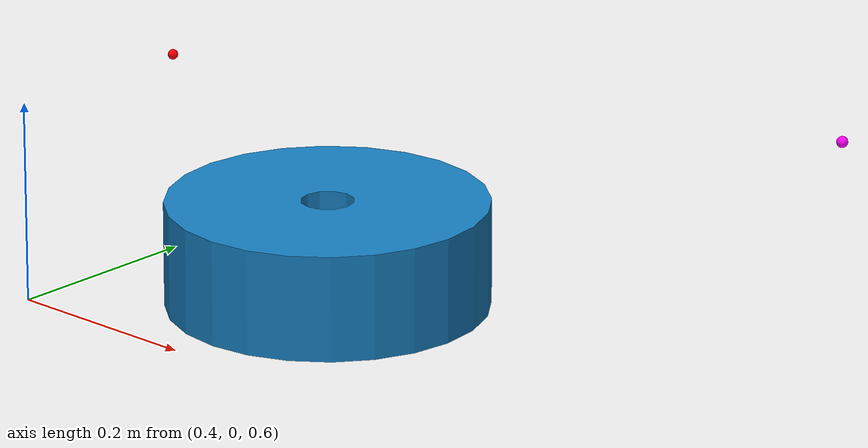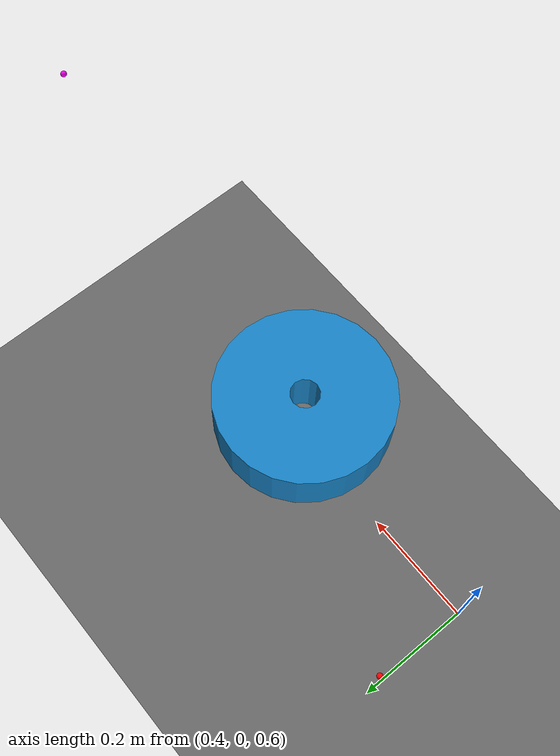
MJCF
<?xml version="1.0" encoding="utf-8"?>
<mujoco>
	<compiler angle="degree" coordinate="local" meshdir="./stls" texturedir="./textures"></compiler>
	<option timestep="0.002" gravity="0 0 0">
		<flag warmstart="enable"></flag>

	</option>

	<include file="mani_share.xml"></include>

	<worldbody>
		<geom name="floor0" pos="0.6 0 0" size="1 0.5 0.5" type="plane" condim="3" material="floor_mat"></geom>
		<body name="floor0" pos="0 0 0">
			<site name="target0" pos="0.4 0.2 0.8" size="0.005 0.005 0.005" rgba="1 0 0 1" type="sphere"></site>
			<site name="robot0:tip" pos="1.4 0 1" rgba="1 0 1 1" size="0.005 0.005 0.005"></site>
		</body>

        <body name="block0" pos="0.8 0 0.75">
			<geom name="robot0:hole0" mesh="robot0:hole0" material="block_mat" class="robot0:blue"></geom>
		</body>

		<light directional="true" ambient="0.2 0.2 0.2" diffuse="0.8 0.8 0.8" specular="0.3 0.3 0.3" castshadow="false" pos="0 0 4" dir="0 0 -1" name="light0"></light>
	</worldbody>

</mujoco>

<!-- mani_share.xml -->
<mujoco>
    <asset>
        <texture type="skybox" builtin="gradient" rgb1="0.44 0.85 0.56" rgb2="0.46 0.87 0.58" width="32" height="32"></texture>
        <texture name="texture_block" file="block.png" gridsize="3 4" gridlayout=".U..LFRB.D.."></texture>

        <material name="floor_mat" specular="0" shininess="0.5" reflectance="0" rgba="0.4 0.4 0.4 1"></material>
        <material name="table_mat" specular="0" shininess="0.5" reflectance="0" rgba="0.93 0.93 0.93 1"></material>
        <material name="block_mat" specular="0" shininess="0.5" reflectance="0" rgba="0.2 0.2 0.2 1"></material>
        <material name="puck_mat" specular="0" shininess="0.5" reflectance="0" rgba="0.2 0.2 0.2 1"></material>
        <material name="robot0:geomMat" shininess="0.03" specular="0.4"></material>
        <material name="robot0:gripper_finger_mat" shininess="0.03" specular="0.4" reflectance="0"></material>
        <material name="robot0:gripper_mat" shininess="0.03" specular="0.4" reflectance="0"></material>
        <material name="robot0:arm_mat" shininess="0.03" specular="0.4" reflectance="0"></material>
        <material name="robot0:head_mat" shininess="0.03" specular="0.4" reflectance="0"></material>
        <material name="robot0:torso_mat" shininess="0.03" specular="0.4" reflectance="0"></material>
        <material name="robot0:base_mat" shininess="0.03" specular="0.4" reflectance="0"></material>
        <mesh file="hole0.stl" name="robot0:hole0"></mesh>
    </asset>

    <default>
        <default class="robot0:fetch">
            <geom margin="0.001" material="robot0:geomMat" rgba="1 1 1 1" solimp="0.99 0.99 0.01" solref="0.01 1" type="mesh" user="0"></geom>
            <joint armature="1" damping="50" frictionloss="0" stiffness="0"></joint>
            <default class="robot0:grey">
                <geom rgba="0.356 0.361 0.376 1.0"></geom>
            </default>
            <default class="robot0:blue">
                <geom rgba="0.086 0.506 0.767 1.0"></geom>
            </default>
            <default class="robot0:yellow">
                <geom rgba="0.9 0.9 0.1 1.0"></geom>
            </default>
        </default>
    </default>
</mujoco>
